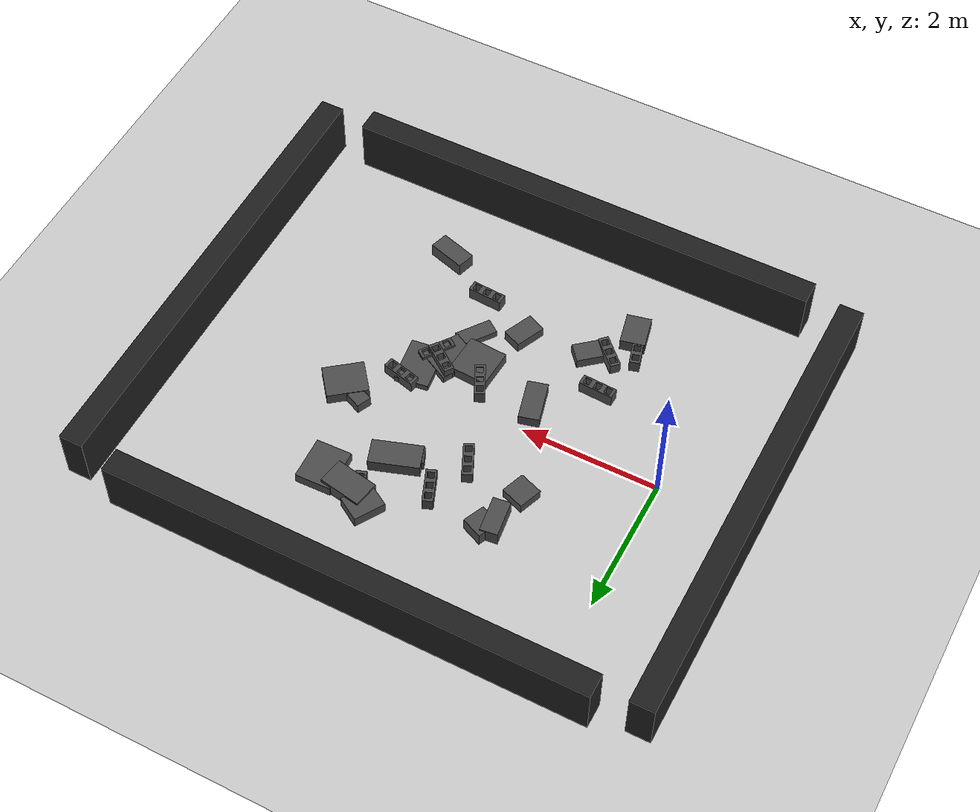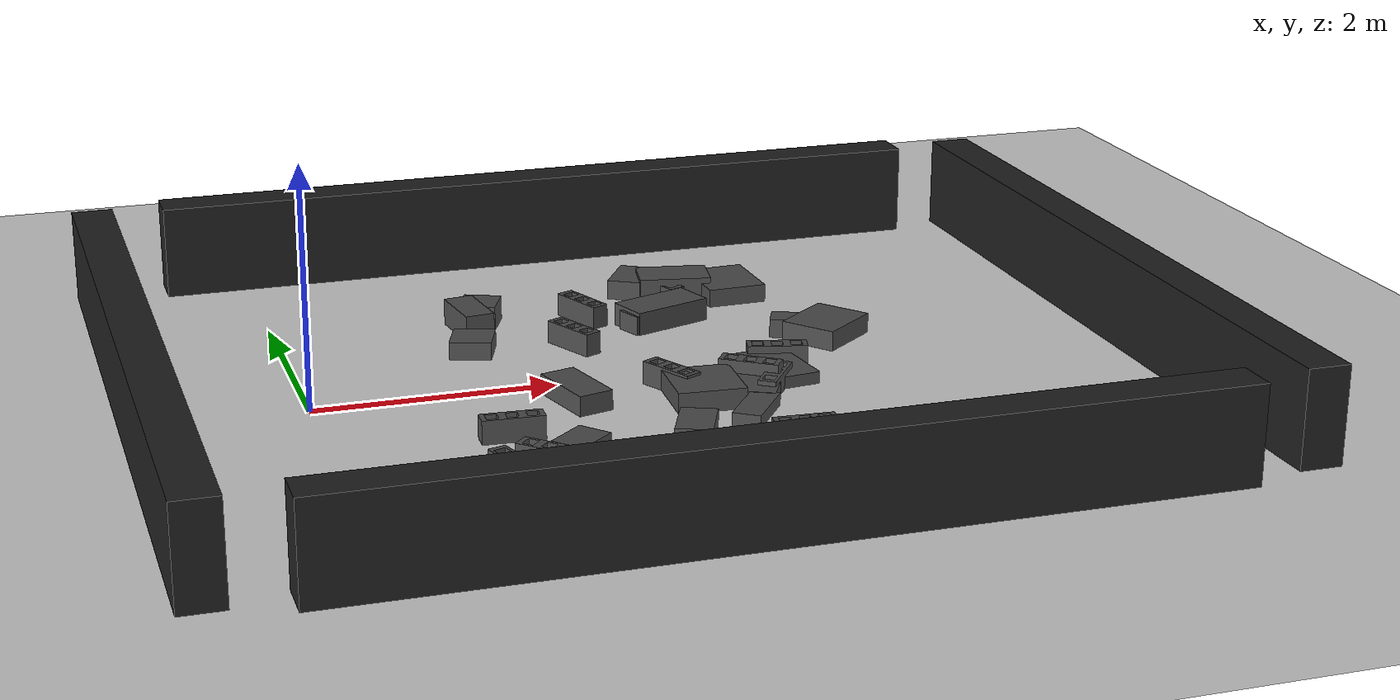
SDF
<sdf version="1.6">
 <world name="default">
  <plugin name="xbot2_clock" filename="libxbot2_gz_clock.so"/>
  <gravity>0 0 -9.81</gravity>
  <model name="ground_plane">
   <static>1</static>
   <link name="link">
    <collision name="collision">
     <geometry><plane><normal>0 0 1</normal><size>100 100</size></plane></geometry>
     <surface><friction><ode><mu>1</mu><mu2>1</mu2></ode></friction></surface>
    </collision>
    <visual name="visual">
     <cast_shadows>0</cast_shadows>
     <geometry><plane><normal>0 0 1</normal><size>100 100</size></plane></geometry>
     <material>
      <script><uri>file://media/materials/scripts/gazebo.material</uri><name>Gazebo/Grey</name></script>
     </material>
    </visual>
   </link>
  </model>
  <light name="sun" type="directional">
   <pose>0 0 10 0 -0 0</pose>
   <diffuse>0.8 0.8 0.8 1</diffuse>
   <specular>0.2 0.2 0.2 1</specular>
   <attenuation>
    <range>1000</range>
    <constant>0.9</constant>
    <linear>0.01</linear>
    <quadratic>0.001</quadratic>
   </attenuation>
   <direction>-0.5 0.1 -0.9</direction>
  </light>
  <physics name="update_rate" default="0" type="ode">
   <real_time_update_rate>4000</real_time_update_rate>
   <max_step_size>0.00025</max_step_size>
   <max_contacts>5</max_contacts>
   <bullet>
    <solver><iters>100</iters><sor>1.55</sor><type>sequential_impulse</type></solver>
    <constraints>
     <contact_surface_layer>0.2</contact_surface_layer>
     <cfm>0.005</cfm>
     <erp>0.2</erp>
     <split_impulse>1</split_impulse>
     <split_impulse_penetration_threshold>-0.01</split_impulse_penetration_threshold>
    </constraints>
   </bullet>
   <ode>
    <solver>
     <iters>50</iters>
     <sor>1.2</sor>
     <type>quick</type>
     <use_dynamic_moi_rescaling>0</use_dynamic_moi_rescaling>
    </solver>
    <constraints>
     <contact_surface_layer>0.0002</contact_surface_layer>
     <contact_max_correcting_vel>500</contact_max_correcting_vel>
     <cfm>1e-06</cfm>
     <erp>0.3</erp>
    </constraints>
   </ode>
   <real_time_factor>1</real_time_factor>
  </physics>
  <magnetic_field>6e-06 2.3e-05 -4.2e-05</magnetic_field>
  <atmosphere type="adiabatic"/>
  <scene><ambient>0.4 0.4 0.4 1</ambient><background>0.7 0.7 0.7 1</background><shadows>1</shadows></scene>
  <audio><device>default</device></audio>
  <spherical_coordinates>
   <surface_model>EARTH_WGS84</surface_model>
   <latitude_deg>0</latitude_deg>
   <longitude_deg>0</longitude_deg>
   <elevation>0</elevation>
   <heading_deg>0</heading_deg>
  </spherical_coordinates>
  <model name="brick_0">
   <pose>3.647993 -0.592159 0.050940 0.000000 0.000000 0.954718</pose>
   <link name="link">
    <inertial>
     <mass>15.0</mass>
     <inertia>
      <ixx>0.07565625</ixx>
      <ixy>0.0</ixy>
      <ixz>0.0</ixz>
      <iyy>0.340625</iyy>
      <iyz>0.0</iyz>
      <izz>0.33125</izz>
     </inertia>
    </inertial>
    <collision name="collision">
     <geometry><mesh><uri>file://../config/meshes/Brick/Brick.dae</uri></mesh></geometry>
     <max_contacts>100</max_contacts>
     <surface>
      <friction>
       <ode><mu>0.62</mu><mu2>0.6</mu2></ode>
       <torsional><coefficient>1.0</coefficient></torsional>
      </friction>
     </surface>
    </collision>
    <visual name="visual">
     <geometry><mesh><uri>file://../config/meshes/Brick/Brick.dae</uri></mesh></geometry>
     <material>
      <ambient>0.3 0.3 0.3 1</ambient>
      <diffuse>0.3 0.3 0.3 1</diffuse>
      <specular>0 0 0 0</specular>
      <emissive>0 0 0 1</emissive>
     </material>
    </visual>
   </link>
  </model>
  <model name="box_1">
   <pose>1.769967 -1.524809 0.077814 0.000000 0.000000 2.279267</pose>
   <link name="link">
    <inertial>
     <mass>1000.000000</mass>
     <inertia>
      <ixx>166.700000</ixx>
      <ixy>0.000000</ixy>
      <ixz>0.000000</ixz>
      <iyy>166.700000</iyy>
      <iyz>0.000000</iyz>
      <izz>166.700000</izz>
     </inertia>
    </inertial>
    <collision name="collision">
     <geometry><box><size>0.286308 0.380764 0.155629</size></box></geometry>
     <surface>
      <friction>
       <ode><mu>0.62</mu><mu2>0.6</mu2></ode>
       <torsional><coefficient>1.0</coefficient></torsional>
      </friction>
     </surface>
    </collision>
    <visual name="visual">
     <geometry><box><size>0.286308 0.380764 0.155629</size></box></geometry>
     <material>
      <script><name>Gazebo/DarkGrey</name><uri>file://media/materials/scripts/gazebo.material</uri></script>
     </material>
    </visual>
   </link>
  </model>
  <model name="box_2">
   <pose>2.708269 -1.426721 0.078516 0.000000 0.000000 1.155246</pose>
   <link name="link">
    <inertial>
     <mass>1000.000000</mass>
     <inertia>
      <ixx>166.700000</ixx>
      <ixy>0.000000</ixy>
      <ixz>0.000000</ixz>
      <iyy>166.700000</iyy>
      <iyz>0.000000</iyz>
      <izz>166.700000</izz>
     </inertia>
    </inertial>
    <collision name="collision">
     <geometry><box><size>0.452977 0.292117 0.157032</size></box></geometry>
     <surface>
      <friction>
       <ode><mu>0.62</mu><mu2>0.6</mu2></ode>
       <torsional><coefficient>1.0</coefficient></torsional>
      </friction>
     </surface>
    </collision>
    <visual name="visual">
     <geometry><box><size>0.452977 0.292117 0.157032</size></box></geometry>
     <material>
      <script><name>Gazebo/DarkGrey</name><uri>file://media/materials/scripts/gazebo.material</uri></script>
     </material>
    </visual>
   </link>
  </model>
  <model name="box_3">
   <pose>3.026289 -0.647613 0.086250 0.000000 0.000000 -1.632931</pose>
   <link name="link">
    <inertial>
     <mass>1000.000000</mass>
     <inertia>
      <ixx>166.700000</ixx>
      <ixy>0.000000</ixy>
      <ixz>0.000000</ixz>
      <iyy>166.700000</iyy>
      <iyz>0.000000</iyz>
      <izz>166.700000</izz>
     </inertia>
    </inertial>
    <collision name="collision">
     <geometry><box><size>0.577530 0.559580 0.172500</size></box></geometry>
     <surface>
      <friction>
       <ode><mu>0.62</mu><mu2>0.6</mu2></ode>
       <torsional><coefficient>1.0</coefficient></torsional>
      </friction>
     </surface>
    </collision>
    <visual name="visual">
     <geometry><box><size>0.577530 0.559580 0.172500</size></box></geometry>
     <material>
      <script><name>Gazebo/DarkGrey</name><uri>file://media/materials/scripts/gazebo.material</uri></script>
     </material>
    </visual>
   </link>
  </model>
  <model name="box_4">
   <pose>4.491485 0.474503 0.085678 0.000000 0.000000 0.667094</pose>
   <link name="link">
    <inertial>
     <mass>1000.000000</mass>
     <inertia>
      <ixx>166.700000</ixx>
      <ixy>0.000000</ixy>
      <ixz>0.000000</ixz>
      <iyy>166.700000</iyy>
      <iyz>0.000000</iyz>
      <izz>166.700000</izz>
     </inertia>
    </inertial>
    <collision name="collision">
     <geometry><box><size>0.590367 0.490029 0.171356</size></box></geometry>
     <surface>
      <friction>
       <ode><mu>0.62</mu><mu2>0.6</mu2></ode>
       <torsional><coefficient>1.0</coefficient></torsional>
      </friction>
     </surface>
    </collision>
    <visual name="visual">
     <geometry><box><size>0.590367 0.490029 0.171356</size></box></geometry>
     <material>
      <script><name>Gazebo/DarkGrey</name><uri>file://media/materials/scripts/gazebo.material</uri></script>
     </material>
    </visual>
   </link>
  </model>
  <model name="brick_5">
   <pose>1.370283 -1.016173 0.091485 0.000000 0.000000 -0.048605</pose>
   <link name="link">
    <inertial>
     <mass>15.0</mass>
     <inertia>
      <ixx>0.07565625</ixx>
      <ixy>0.0</ixy>
      <ixz>0.0</ixz>
      <iyy>0.340625</iyy>
      <iyz>0.0</iyz>
      <izz>0.33125</izz>
     </inertia>
    </inertial>
    <collision name="collision">
     <geometry><mesh><uri>file://../config/meshes/Brick/Brick.dae</uri></mesh></geometry>
     <max_contacts>100</max_contacts>
     <surface>
      <friction>
       <ode><mu>0.62</mu><mu2>0.6</mu2></ode>
       <torsional><coefficient>1.0</coefficient></torsional>
      </friction>
     </surface>
    </collision>
    <visual name="visual">
     <geometry><mesh><uri>file://../config/meshes/Brick/Brick.dae</uri></mesh></geometry>
     <material>
      <ambient>0.3 0.3 0.3 1</ambient>
      <diffuse>0.3 0.3 0.3 1</diffuse>
      <specular>0 0 0 0</specular>
      <emissive>0 0 0 1</emissive>
     </material>
    </visual>
   </link>
  </model>
  <model name="box_6">
   <pose>2.049024 -0.407733 0.083834 0.000000 0.000000 0.255658</pose>
   <link name="link">
    <inertial>
     <mass>1000.000000</mass>
     <inertia>
      <ixx>166.700000</ixx>
      <ixy>0.000000</ixy>
      <ixz>0.000000</ixz>
      <iyy>166.700000</iyy>
      <iyz>0.000000</iyz>
      <izz>166.700000</izz>
     </inertia>
    </inertial>
    <collision name="collision">
     <geometry><box><size>0.296160 0.612391 0.167667</size></box></geometry>
     <surface>
      <friction>
       <ode><mu>0.62</mu><mu2>0.6</mu2></ode>
       <torsional><coefficient>1.0</coefficient></torsional>
      </friction>
     </surface>
    </collision>
    <visual name="visual">
     <geometry><box><size>0.296160 0.612391 0.167667</size></box></geometry>
     <material>
      <script><name>Gazebo/DarkGrey</name><uri>file://media/materials/scripts/gazebo.material</uri></script>
     </material>
    </visual>
   </link>
  </model>
  <model name="box_7">
   <pose>4.053827 1.820171 0.078387 0.000000 0.000000 -3.108010</pose>
   <link name="link">
    <inertial>
     <mass>1000.000000</mass>
     <inertia>
      <ixx>166.700000</ixx>
      <ixy>0.000000</ixy>
      <ixz>0.000000</ixz>
      <iyy>166.700000</iyy>
      <iyz>0.000000</iyz>
      <izz>166.700000</izz>
     </inertia>
    </inertial>
    <collision name="collision">
     <geometry><box><size>0.517527 0.621049 0.156775</size></box></geometry>
     <surface>
      <friction>
       <ode><mu>0.62</mu><mu2>0.6</mu2></ode>
       <torsional><coefficient>1.0</coefficient></torsional>
      </friction>
     </surface>
    </collision>
    <visual name="visual">
     <geometry><box><size>0.517527 0.621049 0.156775</size></box></geometry>
     <material>
      <script><name>Gazebo/DarkGrey</name><uri>file://media/materials/scripts/gazebo.material</uri></script>
     </material>
    </visual>
   </link>
  </model>
  <model name="box_8">
   <pose>3.424365 -0.585881 0.054163 0.000000 0.000000 1.085027</pose>
   <link name="link">
    <inertial>
     <mass>1000.000000</mass>
     <inertia>
      <ixx>166.700000</ixx>
      <ixy>0.000000</ixy>
      <ixz>0.000000</ixz>
      <iyy>166.700000</iyy>
      <iyz>0.000000</iyz>
      <izz>166.700000</izz>
     </inertia>
    </inertial>
    <collision name="collision">
     <geometry><box><size>0.591929 0.523029 0.108327</size></box></geometry>
     <surface>
      <friction>
       <ode><mu>0.62</mu><mu2>0.6</mu2></ode>
       <torsional><coefficient>1.0</coefficient></torsional>
      </friction>
     </surface>
    </collision>
    <visual name="visual">
     <geometry><box><size>0.591929 0.523029 0.108327</size></box></geometry>
     <material>
      <script><name>Gazebo/DarkGrey</name><uri>file://media/materials/scripts/gazebo.material</uri></script>
     </material>
    </visual>
   </link>
  </model>
  <model name="box_9">
   <pose>3.128317 1.157307 0.082726 0.000000 0.000000 -2.752709</pose>
   <link name="link">
    <inertial>
     <mass>1000.000000</mass>
     <inertia>
      <ixx>166.700000</ixx>
      <ixy>0.000000</ixy>
      <ixz>0.000000</ixz>
      <iyy>166.700000</iyy>
      <iyz>0.000000</iyz>
      <izz>166.700000</izz>
     </inertia>
    </inertial>
    <collision name="collision">
     <geometry><box><size>0.436017 0.239884 0.165451</size></box></geometry>
     <surface>
      <friction>
       <ode><mu>0.62</mu><mu2>0.6</mu2></ode>
       <torsional><coefficient>1.0</coefficient></torsional>
      </friction>
     </surface>
    </collision>
    <visual name="visual">
     <geometry><box><size>0.436017 0.239884 0.165451</size></box></geometry>
     <material>
      <script><name>Gazebo/DarkGrey</name><uri>file://media/materials/scripts/gazebo.material</uri></script>
     </material>
    </visual>
   </link>
  </model>
  <model name="box_10">
   <pose>3.270001 1.247233 0.098668 0.000000 0.000000 -2.812946</pose>
   <link name="link">
    <inertial>
     <mass>1000.000000</mass>
     <inertia>
      <ixx>166.700000</ixx>
      <ixy>0.000000</ixy>
      <ixz>0.000000</ixz>
      <iyy>166.700000</iyy>
      <iyz>0.000000</iyz>
      <izz>166.700000</izz>
     </inertia>
    </inertial>
    <collision name="collision">
     <geometry><box><size>0.713221 0.363489 0.197336</size></box></geometry>
     <surface>
      <friction>
       <ode><mu>0.62</mu><mu2>0.6</mu2></ode>
       <torsional><coefficient>1.0</coefficient></torsional>
      </friction>
     </surface>
    </collision>
    <visual name="visual">
     <geometry><box><size>0.713221 0.363489 0.197336</size></box></geometry>
     <material>
      <script><name>Gazebo/DarkGrey</name><uri>file://media/materials/scripts/gazebo.material</uri></script>
     </material>
    </visual>
   </link>
  </model>
  <model name="box_11">
   <pose>3.297788 2.093783 0.086088 0.000000 0.000000 -2.116958</pose>
   <link name="link">
    <inertial>
     <mass>1000.000000</mass>
     <inertia>
      <ixx>166.700000</ixx>
      <ixy>0.000000</ixy>
      <ixz>0.000000</ixz>
      <iyy>166.700000</iyy>
      <iyz>0.000000</iyz>
      <izz>166.700000</izz>
     </inertia>
    </inertial>
    <collision name="collision">
     <geometry><box><size>0.460624 0.381327 0.172176</size></box></geometry>
     <surface>
      <friction>
       <ode><mu>0.62</mu><mu2>0.6</mu2></ode>
       <torsional><coefficient>1.0</coefficient></torsional>
      </friction>
     </surface>
    </collision>
    <visual name="visual">
     <geometry><box><size>0.460624 0.381327 0.172176</size></box></geometry>
     <material>
      <script><name>Gazebo/DarkGrey</name><uri>file://media/materials/scripts/gazebo.material</uri></script>
     </material>
    </visual>
   </link>
  </model>
  <model name="brick_12">
   <pose>2.633500 1.479702 0.103302 0.000000 0.000000 -1.187400</pose>
   <link name="link">
    <inertial>
     <mass>15.0</mass>
     <inertia>
      <ixx>0.07565625</ixx>
      <ixy>0.0</ixy>
      <ixz>0.0</ixz>
      <iyy>0.340625</iyy>
      <iyz>0.0</iyz>
      <izz>0.33125</izz>
     </inertia>
    </inertial>
    <collision name="collision">
     <geometry><mesh><uri>file://../config/meshes/Brick/Brick.dae</uri></mesh></geometry>
     <max_contacts>100</max_contacts>
     <surface>
      <friction>
       <ode><mu>0.62</mu><mu2>0.6</mu2></ode>
       <torsional><coefficient>1.0</coefficient></torsional>
      </friction>
     </surface>
    </collision>
    <visual name="visual">
     <geometry><mesh><uri>file://../config/meshes/Brick/Brick.dae</uri></mesh></geometry>
     <material>
      <ambient>0.3 0.3 0.3 1</ambient>
      <diffuse>0.3 0.3 0.3 1</diffuse>
      <specular>0 0 0 0</specular>
      <emissive>0 0 0 1</emissive>
     </material>
    </visual>
   </link>
  </model>
  <model name="box_13">
   <pose>4.378637 0.550989 0.080498 0.000000 0.000000 2.716373</pose>
   <link name="link">
    <inertial>
     <mass>1000.000000</mass>
     <inertia>
      <ixx>166.700000</ixx>
      <ixy>0.000000</ixy>
      <ixz>0.000000</ixz>
      <iyy>166.700000</iyy>
      <iyz>0.000000</iyz>
      <izz>166.700000</izz>
     </inertia>
    </inertial>
    <collision name="collision">
     <geometry><box><size>0.666694 0.218237 0.160996</size></box></geometry>
     <surface>
      <friction>
       <ode><mu>0.62</mu><mu2>0.6</mu2></ode>
       <torsional><coefficient>1.0</coefficient></torsional>
      </friction>
     </surface>
    </collision>
    <visual name="visual">
     <geometry><box><size>0.666694 0.218237 0.160996</size></box></geometry>
     <material>
      <script><name>Gazebo/DarkGrey</name><uri>file://media/materials/scripts/gazebo.material</uri></script>
     </material>
    </visual>
   </link>
  </model>
  <model name="box_14">
   <pose>3.302654 -1.114127 0.052729 0.000000 0.000000 0.939741</pose>
   <link name="link">
    <inertial>
     <mass>1000.000000</mass>
     <inertia>
      <ixx>166.700000</ixx>
      <ixy>0.000000</ixy>
      <ixz>0.000000</ixz>
      <iyy>166.700000</iyy>
      <iyz>0.000000</iyz>
      <izz>166.700000</izz>
     </inertia>
    </inertial>
    <collision name="collision">
     <geometry><box><size>0.534755 0.232379 0.105459</size></box></geometry>
     <surface>
      <friction>
       <ode><mu>0.62</mu><mu2>0.6</mu2></ode>
       <torsional><coefficient>1.0</coefficient></torsional>
      </friction>
     </surface>
    </collision>
    <visual name="visual">
     <geometry><box><size>0.534755 0.232379 0.105459</size></box></geometry>
     <material>
      <script><name>Gazebo/DarkGrey</name><uri>file://media/materials/scripts/gazebo.material</uri></script>
     </material>
    </visual>
   </link>
  </model>
  <model name="brick_15">
   <pose>3.491843 -0.443183 0.118538 0.000000 0.000000 -0.623613</pose>
   <link name="link">
    <inertial>
     <mass>15.0</mass>
     <inertia>
      <ixx>0.07565625</ixx>
      <ixy>0.0</ixy>
      <ixz>0.0</ixz>
      <iyy>0.340625</iyy>
      <iyz>0.0</iyz>
      <izz>0.33125</izz>
     </inertia>
    </inertial>
    <collision name="collision">
     <geometry><mesh><uri>file://../config/meshes/Brick/Brick.dae</uri></mesh></geometry>
     <max_contacts>100</max_contacts>
     <surface>
      <friction>
       <ode><mu>0.62</mu><mu2>0.6</mu2></ode>
       <torsional><coefficient>1.0</coefficient></torsional>
      </friction>
     </surface>
    </collision>
    <visual name="visual">
     <geometry><mesh><uri>file://../config/meshes/Brick/Brick.dae</uri></mesh></geometry>
     <material>
      <ambient>0.3 0.3 0.3 1</ambient>
      <diffuse>0.3 0.3 0.3 1</diffuse>
      <specular>0 0 0 0</specular>
      <emissive>0 0 0 1</emissive>
     </material>
    </visual>
   </link>
  </model>
  <model name="brick_16">
   <pose>2.384763 0.861945 0.085351 0.000000 0.000000 -1.134160</pose>
   <link name="link">
    <inertial>
     <mass>15.0</mass>
     <inertia>
      <ixx>0.07565625</ixx>
      <ixy>0.0</ixy>
      <ixz>0.0</ixz>
      <iyy>0.340625</iyy>
      <iyz>0.0</iyz>
      <izz>0.33125</izz>
     </inertia>
    </inertial>
    <collision name="collision">
     <geometry><mesh><uri>file://../config/meshes/Brick/Brick.dae</uri></mesh></geometry>
     <max_contacts>100</max_contacts>
     <surface>
      <friction>
       <ode><mu>0.62</mu><mu2>0.6</mu2></ode>
       <torsional><coefficient>1.0</coefficient></torsional>
      </friction>
     </surface>
    </collision>
    <visual name="visual">
     <geometry><mesh><uri>file://../config/meshes/Brick/Brick.dae</uri></mesh></geometry>
     <material>
      <ambient>0.3 0.3 0.3 1</ambient>
      <diffuse>0.3 0.3 0.3 1</diffuse>
      <specular>0 0 0 0</specular>
      <emissive>0 0 0 1</emissive>
     </material>
    </visual>
   </link>
  </model>
  <model name="brick_17">
   <pose>2.850454 -0.367512 0.097310 0.000000 0.000000 -1.101931</pose>
   <link name="link">
    <inertial>
     <mass>15.0</mass>
     <inertia>
      <ixx>0.07565625</ixx>
      <ixy>0.0</ixy>
      <ixz>0.0</ixz>
      <iyy>0.340625</iyy>
      <iyz>0.0</iyz>
      <izz>0.33125</izz>
     </inertia>
    </inertial>
    <collision name="collision">
     <geometry><mesh><uri>file://../config/meshes/Brick/Brick.dae</uri></mesh></geometry>
     <max_contacts>100</max_contacts>
     <surface>
      <friction>
       <ode><mu>0.62</mu><mu2>0.6</mu2></ode>
       <torsional><coefficient>1.0</coefficient></torsional>
      </friction>
     </surface>
    </collision>
    <visual name="visual">
     <geometry><mesh><uri>file://../config/meshes/Brick/Brick.dae</uri></mesh></geometry>
     <material>
      <ambient>0.3 0.3 0.3 1</ambient>
      <diffuse>0.3 0.3 0.3 1</diffuse>
      <specular>0 0 0 0</specular>
      <emissive>0 0 0 1</emissive>
     </material>
    </visual>
   </link>
  </model>
  <model name="box_18">
   <pose>1.534390 0.958542 0.075397 0.000000 0.000000 -1.918774</pose>
   <link name="link">
    <inertial>
     <mass>1000.000000</mass>
     <inertia>
      <ixx>166.700000</ixx>
      <ixy>0.000000</ixy>
      <ixz>0.000000</ixz>
      <iyy>166.700000</iyy>
      <iyz>0.000000</iyz>
      <izz>166.700000</izz>
     </inertia>
    </inertial>
    <collision name="collision">
     <geometry><box><size>0.353187 0.351676 0.150793</size></box></geometry>
     <surface>
      <friction>
       <ode><mu>0.62</mu><mu2>0.6</mu2></ode>
       <torsional><coefficient>1.0</coefficient></torsional>
      </friction>
     </surface>
    </collision>
    <visual name="visual">
     <geometry><box><size>0.353187 0.351676 0.150793</size></box></geometry>
     <material>
      <script><name>Gazebo/DarkGrey</name><uri>file://media/materials/scripts/gazebo.material</uri></script>
     </material>
    </visual>
   </link>
  </model>
  <model name="brick_19">
   <pose>1.495073 -1.643921 0.065480 0.000000 0.000000 2.365933</pose>
   <link name="link">
    <inertial>
     <mass>15.0</mass>
     <inertia>
      <ixx>0.07565625</ixx>
      <ixy>0.0</ixy>
      <ixz>0.0</ixz>
      <iyy>0.340625</iyy>
      <iyz>0.0</iyz>
      <izz>0.33125</izz>
     </inertia>
    </inertial>
    <collision name="collision">
     <geometry><mesh><uri>file://../config/meshes/Brick/Brick.dae</uri></mesh></geometry>
     <max_contacts>100</max_contacts>
     <surface>
      <friction>
       <ode><mu>0.62</mu><mu2>0.6</mu2></ode>
       <torsional><coefficient>1.0</coefficient></torsional>
      </friction>
     </surface>
    </collision>
    <visual name="visual">
     <geometry><mesh><uri>file://../config/meshes/Brick/Brick.dae</uri></mesh></geometry>
     <material>
      <ambient>0.3 0.3 0.3 1</ambient>
      <diffuse>0.3 0.3 0.3 1</diffuse>
      <specular>0 0 0 0</specular>
      <emissive>0 0 0 1</emissive>
     </material>
    </visual>
   </link>
  </model>
  <model name="box_20">
   <pose>3.743497 -0.283240 0.050070 0.000000 0.000000 1.698513</pose>
   <link name="link">
    <inertial>
     <mass>1000.000000</mass>
     <inertia>
      <ixx>166.700000</ixx>
      <ixy>0.000000</ixy>
      <ixz>0.000000</ixz>
      <iyy>166.700000</iyy>
      <iyz>0.000000</iyz>
      <izz>166.700000</izz>
     </inertia>
    </inertial>
    <collision name="collision">
     <geometry><box><size>0.675587 0.494469 0.100141</size></box></geometry>
     <surface>
      <friction>
       <ode><mu>0.62</mu><mu2>0.6</mu2></ode>
       <torsional><coefficient>1.0</coefficient></torsional>
      </friction>
     </surface>
    </collision>
    <visual name="visual">
     <geometry><box><size>0.675587 0.494469 0.100141</size></box></geometry>
     <material>
      <script><name>Gazebo/DarkGrey</name><uri>file://media/materials/scripts/gazebo.material</uri></script>
     </material>
    </visual>
   </link>
  </model>
  <model name="brick_21">
   <pose>3.878191 -0.002317 0.065539 0.000000 0.000000 -0.244339</pose>
   <link name="link">
    <inertial>
     <mass>15.0</mass>
     <inertia>
      <ixx>0.07565625</ixx>
      <ixy>0.0</ixy>
      <ixz>0.0</ixz>
      <iyy>0.340625</iyy>
      <iyz>0.0</iyz>
      <izz>0.33125</izz>
     </inertia>
    </inertial>
    <collision name="collision">
     <geometry><mesh><uri>file://../config/meshes/Brick/Brick.dae</uri></mesh></geometry>
     <max_contacts>100</max_contacts>
     <surface>
      <friction>
       <ode><mu>0.62</mu><mu2>0.6</mu2></ode>
       <torsional><coefficient>1.0</coefficient></torsional>
      </friction>
     </surface>
    </collision>
    <visual name="visual">
     <geometry><mesh><uri>file://../config/meshes/Brick/Brick.dae</uri></mesh></geometry>
     <material>
      <ambient>0.3 0.3 0.3 1</ambient>
      <diffuse>0.3 0.3 0.3 1</diffuse>
      <specular>0 0 0 0</specular>
      <emissive>0 0 0 1</emissive>
     </material>
    </visual>
   </link>
  </model>
  <model name="brick_22">
   <pose>3.471920 1.904480 0.052680 0.000000 0.000000 -1.227333</pose>
   <link name="link">
    <inertial>
     <mass>15.0</mass>
     <inertia>
      <ixx>0.07565625</ixx>
      <ixy>0.0</ixy>
      <ixz>0.0</ixz>
      <iyy>0.340625</iyy>
      <iyz>0.0</iyz>
      <izz>0.33125</izz>
     </inertia>
    </inertial>
    <collision name="collision">
     <geometry><mesh><uri>file://../config/meshes/Brick/Brick.dae</uri></mesh></geometry>
     <max_contacts>100</max_contacts>
     <surface>
      <friction>
       <ode><mu>0.62</mu><mu2>0.6</mu2></ode>
       <torsional><coefficient>1.0</coefficient></torsional>
      </friction>
     </surface>
    </collision>
    <visual name="visual">
     <geometry><mesh><uri>file://../config/meshes/Brick/Brick.dae</uri></mesh></geometry>
     <material>
      <ambient>0.3 0.3 0.3 1</ambient>
      <diffuse>0.3 0.3 0.3 1</diffuse>
      <specular>0 0 0 0</specular>
      <emissive>0 0 0 1</emissive>
     </material>
    </visual>
   </link>
  </model>
  <model name="brick_23">
   <pose>1.167190 -1.855055 0.088777 0.000000 0.000000 1.845726</pose>
   <link name="link">
    <inertial>
     <mass>15.0</mass>
     <inertia>
      <ixx>0.07565625</ixx>
      <ixy>0.0</ixy>
      <ixz>0.0</ixz>
      <iyy>0.340625</iyy>
      <iyz>0.0</iyz>
      <izz>0.33125</izz>
     </inertia>
    </inertial>
    <collision name="collision">
     <geometry><mesh><uri>file://../config/meshes/Brick/Brick.dae</uri></mesh></geometry>
     <max_contacts>100</max_contacts>
     <surface>
      <friction>
       <ode><mu>0.62</mu><mu2>0.6</mu2></ode>
       <torsional><coefficient>1.0</coefficient></torsional>
      </friction>
     </surface>
    </collision>
    <visual name="visual">
     <geometry><mesh><uri>file://../config/meshes/Brick/Brick.dae</uri></mesh></geometry>
     <material>
      <ambient>0.3 0.3 0.3 1</ambient>
      <diffuse>0.3 0.3 0.3 1</diffuse>
      <specular>0 0 0 0</specular>
      <emissive>0 0 0 1</emissive>
     </material>
    </visual>
   </link>
  </model>
  <model name="box_24">
   <pose>4.254600 -2.199692 0.104416 0.000000 0.000000 -0.290776</pose>
   <link name="link">
    <inertial>
     <mass>1000.000000</mass>
     <inertia>
      <ixx>166.700000</ixx>
      <ixy>0.000000</ixy>
      <ixz>0.000000</ixz>
      <iyy>166.700000</iyy>
      <iyz>0.000000</iyz>
      <izz>166.700000</izz>
     </inertia>
    </inertial>
    <collision name="collision">
     <geometry><box><size>0.552283 0.266010 0.208832</size></box></geometry>
     <surface>
      <friction>
       <ode><mu>0.62</mu><mu2>0.6</mu2></ode>
       <torsional><coefficient>1.0</coefficient></torsional>
      </friction>
     </surface>
    </collision>
    <visual name="visual">
     <geometry><box><size>0.552283 0.266010 0.208832</size></box></geometry>
     <material>
      <script><name>Gazebo/DarkGrey</name><uri>file://media/materials/scripts/gazebo.material</uri></script>
     </material>
    </visual>
   </link>
  </model>
  <model name="box_25">
   <pose>3.601783 1.941791 0.103016 0.000000 0.000000 -1.749362</pose>
   <link name="link">
    <inertial>
     <mass>1000.000000</mass>
     <inertia>
      <ixx>166.700000</ixx>
      <ixy>0.000000</ixy>
      <ixz>0.000000</ixz>
      <iyy>166.700000</iyy>
      <iyz>0.000000</iyz>
      <izz>166.700000</izz>
     </inertia>
    </inertial>
    <collision name="collision">
     <geometry><box><size>0.379680 0.625911 0.206032</size></box></geometry>
     <surface>
      <friction>
       <ode><mu>0.62</mu><mu2>0.6</mu2></ode>
       <torsional><coefficient>1.0</coefficient></torsional>
      </friction>
     </surface>
    </collision>
    <visual name="visual">
     <geometry><box><size>0.379680 0.625911 0.206032</size></box></geometry>
     <material>
      <script><name>Gazebo/DarkGrey</name><uri>file://media/materials/scripts/gazebo.material</uri></script>
     </material>
    </visual>
   </link>
  </model>
  <model name="box_26">
   <pose>1.637981 1.513256 0.112615 0.000000 0.000000 1.702345</pose>
   <link name="link">
    <inertial>
     <mass>1000.000000</mass>
     <inertia>
      <ixx>166.700000</ixx>
      <ixy>0.000000</ixy>
      <ixz>0.000000</ixz>
      <iyy>166.700000</iyy>
      <iyz>0.000000</iyz>
      <izz>166.700000</izz>
     </inertia>
    </inertial>
    <collision name="collision">
     <geometry><box><size>0.528990 0.251479 0.225230</size></box></geometry>
     <surface>
      <friction>
       <ode><mu>0.62</mu><mu2>0.6</mu2></ode>
       <torsional><coefficient>1.0</coefficient></torsional>
      </friction>
     </surface>
    </collision>
    <visual name="visual">
     <geometry><box><size>0.528990 0.251479 0.225230</size></box></geometry>
     <material>
      <script><name>Gazebo/DarkGrey</name><uri>file://media/materials/scripts/gazebo.material</uri></script>
     </material>
    </visual>
   </link>
  </model>
  <model name="box_27">
   <pose>1.767969 1.663848 0.104696 0.000000 0.000000 1.157236</pose>
   <link name="link">
    <inertial>
     <mass>1000.000000</mass>
     <inertia>
      <ixx>166.700000</ixx>
      <ixy>0.000000</ixy>
      <ixz>0.000000</ixz>
      <iyy>166.700000</iyy>
      <iyz>0.000000</iyz>
      <izz>166.700000</izz>
     </inertia>
    </inertial>
    <collision name="collision">
     <geometry><box><size>0.324964 0.321115 0.209391</size></box></geometry>
     <surface>
      <friction>
       <ode><mu>0.62</mu><mu2>0.6</mu2></ode>
       <torsional><coefficient>1.0</coefficient></torsional>
      </friction>
     </surface>
    </collision>
    <visual name="visual">
     <geometry><box><size>0.324964 0.321115 0.209391</size></box></geometry>
     <material>
      <script><name>Gazebo/DarkGrey</name><uri>file://media/materials/scripts/gazebo.material</uri></script>
     </material>
    </visual>
   </link>
  </model>
  <model name="brick_28">
   <pose>3.465265 -1.760465 0.098843 0.000000 0.000000 3.082513</pose>
   <link name="link">
    <inertial>
     <mass>15.0</mass>
     <inertia>
      <ixx>0.07565625</ixx>
      <ixy>0.0</ixy>
      <ixz>0.0</ixz>
      <iyy>0.340625</iyy>
      <iyz>0.0</iyz>
      <izz>0.33125</izz>
     </inertia>
    </inertial>
    <collision name="collision">
     <geometry><mesh><uri>file://../config/meshes/Brick/Brick.dae</uri></mesh></geometry>
     <max_contacts>100</max_contacts>
     <surface>
      <friction>
       <ode><mu>0.62</mu><mu2>0.6</mu2></ode>
       <torsional><coefficient>1.0</coefficient></torsional>
      </friction>
     </surface>
    </collision>
    <visual name="visual">
     <geometry><mesh><uri>file://../config/meshes/Brick/Brick.dae</uri></mesh></geometry>
     <material>
      <ambient>0.3 0.3 0.3 1</ambient>
      <diffuse>0.3 0.3 0.3 1</diffuse>
      <specular>0 0 0 0</specular>
      <emissive>0 0 0 1</emissive>
     </material>
    </visual>
   </link>
  </model>
  <model name="box_29">
   <pose>1.319440 -2.136726 0.095117 0.000000 0.000000 -1.348022</pose>
   <link name="link">
    <inertial>
     <mass>1000.000000</mass>
     <inertia>
      <ixx>166.700000</ixx>
      <ixy>0.000000</ixy>
      <ixz>0.000000</ixz>
      <iyy>166.700000</iyy>
      <iyz>0.000000</iyz>
      <izz>166.700000</izz>
     </inertia>
    </inertial>
    <collision name="collision">
     <geometry><box><size>0.475237 0.354420 0.190235</size></box></geometry>
     <surface>
      <friction>
       <ode><mu>0.62</mu><mu2>0.6</mu2></ode>
       <torsional><coefficient>1.0</coefficient></torsional>
      </friction>
     </surface>
    </collision>
    <visual name="visual">
     <geometry><box><size>0.475237 0.354420 0.190235</size></box></geometry>
     <material>
      <script><name>Gazebo/DarkGrey</name><uri>file://media/materials/scripts/gazebo.material</uri></script>
     </material>
    </visual>
   </link>
  </model>
  <model name="wall_0">
   <pose>-1.300000 0.000000 0.4 0 0 0.000000</pose>
   <link name="link">
    <inertial>
     <mass>10000.0</mass>
     <inertia><ixx>166.7</ixx><ixy>0</ixy><ixz>0</ixz><iyy>166.7</iyy><iyz>0</iyz><izz>166.7</izz></inertia>
    </inertial>
    <collision name="collision">
     <geometry><box><size>0.350000 6.800000 0.8</size></box></geometry>
     <surface>
      <friction>
       <ode><mu>0.62</mu><mu2>0.6</mu2></ode>
       <torsional><coefficient>1.0</coefficient></torsional>
      </friction>
     </surface>
    </collision>
    <visual name="visual">
     <geometry><box><size>0.350000 6.800000 0.8</size></box></geometry>
     <material>
      <script><name>Gazebo/FlatBlack</name><uri>file://media/materials/scripts/gazebo.material</uri></script>
     </material>
    </visual>
   </link>
  </model>
  <model name="wall_1">
   <pose>6.900000 0.000000 0.4 0 0 0.000000</pose>
   <link name="link">
    <inertial>
     <mass>10000.0</mass>
     <inertia><ixx>166.7</ixx><ixy>0</ixy><ixz>0</ixz><iyy>166.7</iyy><iyz>0</iyz><izz>166.7</izz></inertia>
    </inertial>
    <collision name="collision">
     <geometry><box><size>0.350000 6.800000 0.8</size></box></geometry>
     <surface>
      <friction>
       <ode><mu>0.62</mu><mu2>0.6</mu2></ode>
       <torsional><coefficient>1.0</coefficient></torsional>
      </friction>
     </surface>
    </collision>
    <visual name="visual">
     <geometry><box><size>0.350000 6.800000 0.8</size></box></geometry>
     <material>
      <script><name>Gazebo/FlatBlack</name><uri>file://media/materials/scripts/gazebo.material</uri></script>
     </material>
    </visual>
   </link>
  </model>
  <model name="wall_2">
   <pose>2.800000 -3.400000 0.4 0 0 0.000000</pose>
   <link name="link">
    <inertial>
     <mass>10000.0</mass>
     <inertia><ixx>166.7</ixx><ixy>0</ixy><ixz>0</ixz><iyy>166.7</iyy><iyz>0</iyz><izz>166.7</izz></inertia>
    </inertial>
    <collision name="collision">
     <geometry><box><size>7.000000 0.350000 0.8</size></box></geometry>
     <surface>
      <friction>
       <ode><mu>0.62</mu><mu2>0.6</mu2></ode>
       <torsional><coefficient>1.0</coefficient></torsional>
      </friction>
     </surface>
    </collision>
    <visual name="visual">
     <geometry><box><size>7.000000 0.350000 0.8</size></box></geometry>
     <material>
      <script><name>Gazebo/FlatBlack</name><uri>file://media/materials/scripts/gazebo.material</uri></script>
     </material>
    </visual>
   </link>
  </model>
  <model name="wall_3">
   <pose>2.800000 3.400000 0.4 0 0 0.000000</pose>
   <link name="link">
    <inertial>
     <mass>10000.0</mass>
     <inertia><ixx>166.7</ixx><ixy>0</ixy><ixz>0</ixz><iyy>166.7</iyy><iyz>0</iyz><izz>166.7</izz></inertia>
    </inertial>
    <collision name="collision">
     <geometry><box><size>7.000000 0.350000 0.8</size></box></geometry>
     <surface>
      <friction>
       <ode><mu>0.62</mu><mu2>0.6</mu2></ode>
       <torsional><coefficient>1.0</coefficient></torsional>
      </friction>
     </surface>
    </collision>
    <visual name="visual">
     <geometry><box><size>7.000000 0.350000 0.8</size></box></geometry>
     <material>
      <script><name>Gazebo/FlatBlack</name><uri>file://media/materials/scripts/gazebo.material</uri></script>
     </material>
    </visual>
   </link>
  </model>
 </world>
</sdf>
